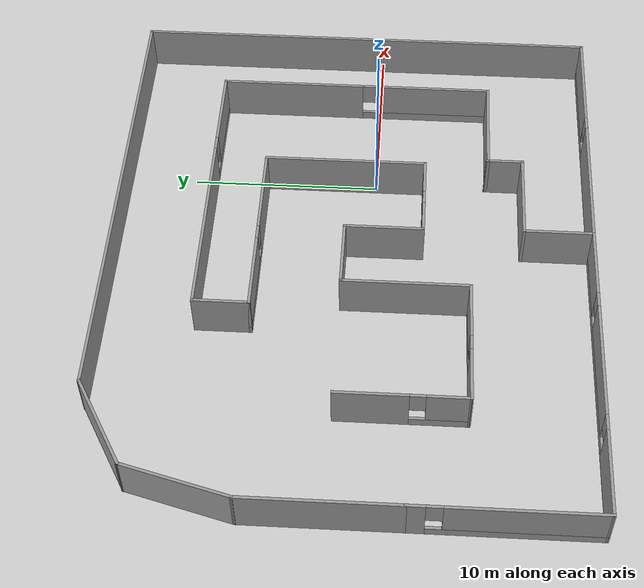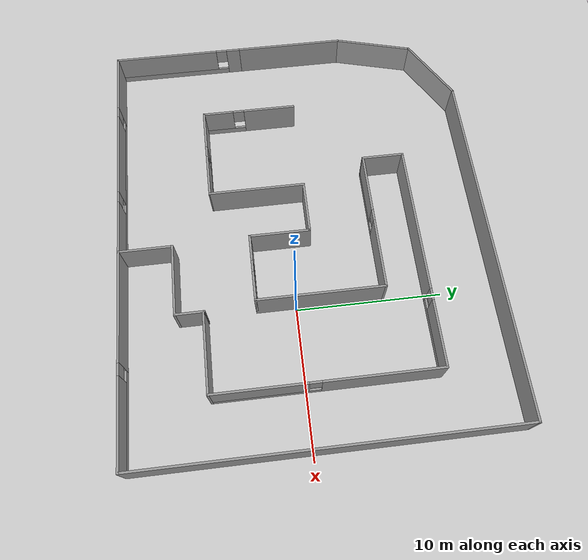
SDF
<sdf version="1.7">
 <world name="default">
  <plugin name="xbot2_clock" filename="libxbot2_gz_clock.so"/>
  <gravity>0 0 -9.81</gravity>
  <model name="ground_plane">
   <static>1</static>
   <link name="link">
    <collision name="collision">
     <geometry><plane><normal>0 0 1</normal><size>100 100</size></plane></geometry>
     <surface><friction><ode><mu>1</mu><mu2>1</mu2></ode></friction></surface>
    </collision>
    <visual name="visual">
     <cast_shadows>0</cast_shadows>
     <geometry><plane><normal>0 0 1</normal><size>100 100</size></plane></geometry>
     <material>
      <script><uri>file://media/materials/scripts/gazebo.material</uri><name>Gazebo/Grey</name></script>
     </material>
    </visual>
   </link>
  </model>
  <light name="sun" type="directional">
   <pose>0 0 10 0 -0 0</pose>
   <diffuse>0.8 0.8 0.8 1</diffuse>
   <specular>0.2 0.2 0.2 1</specular>
   <attenuation>
    <range>1000</range>
    <constant>0.9</constant>
    <linear>0.01</linear>
    <quadratic>0.001</quadratic>
   </attenuation>
   <direction>-0.5 0.1 -0.9</direction>
   <spot><inner_angle>0</inner_angle><outer_angle>0</outer_angle><falloff>0</falloff></spot>
  </light>
  <physics name="update_rate" type="ode">
   <real_time_update_rate>4000</real_time_update_rate>
   <max_step_size>0.00025</max_step_size>
   <max_contacts>5</max_contacts>
   <bullet>
    <solver><iters>100</iters><sor>1.55</sor><type>sequential_impulse</type></solver>
    <constraints>
     <contact_surface_layer>0.2</contact_surface_layer>
     <cfm>0.005</cfm>
     <erp>0.2</erp>
     <split_impulse>1</split_impulse>
     <split_impulse_penetration_threshold>-0.01</split_impulse_penetration_threshold>
    </constraints>
   </bullet>
   <ode>
    <solver>
     <iters>50</iters>
     <sor>1.2</sor>
     <type>quick</type>
     <use_dynamic_moi_rescaling>0</use_dynamic_moi_rescaling>
    </solver>
    <constraints>
     <contact_surface_layer>0.0002</contact_surface_layer>
     <contact_max_correcting_vel>500</contact_max_correcting_vel>
     <cfm>1e-06</cfm>
     <erp>0.3</erp>
    </constraints>
   </ode>
   <real_time_factor>1</real_time_factor>
  </physics>
  <magnetic_field>6e-06 2.3e-05 -4.2e-05</magnetic_field>
  <atmosphere type="adiabatic"/>
  <scene><ambient>0.4 0.4 0.4 1</ambient><background>0.7 0.7 0.7 1</background><shadows>1</shadows></scene>
  <spherical_coordinates>
   <surface_model>EARTH_WGS84</surface_model>
   <latitude_deg>0</latitude_deg>
   <longitude_deg>0</longitude_deg>
   <elevation>0</elevation>
   <heading_deg>0</heading_deg>
  </spherical_coordinates>
  <model name="Untitled2">
   <pose>-5.76967 1.06534 0 0 -0 0</pose>
   <link name="Wall_1">
    <pose>-9.35083 -2.884 0 0 -0 -1.5708</pose>
    <visual name="Wall_1_Visual_0">
     <pose>-1.49216 0 1.25 0 -0 0</pose>
     <geometry><box><size>3.76568 0.15 2.5</size></box></geometry>
     <material>
      <script><uri>file://media/materials/scripts/gazebo.material</uri><name>Gazebo/Grey</name></script>
      <ambient>1 1 1 1</ambient>
     </material>
     <meta><layer>0</layer></meta>
    </visual>
    <collision name="Wall_1_Collision_0">
     <geometry><box><size>3.76568 0.15 2.5</size></box></geometry>
     <pose>-1.49216 0 1.25 0 -0 0</pose>
    </collision>
    <visual name="Wall_1_Visual_1">
     <pose>1.88284 0 0.25 0 -0 0</pose>
     <geometry><box><size>2.98432 0.15 0.5</size></box></geometry>
     <material>
      <script><uri>file://media/materials/scripts/gazebo.material</uri><name>Gazebo/Grey</name></script>
      <ambient>1 1 1 1</ambient>
     </material>
     <meta><layer>0</layer></meta>
    </visual>
    <collision name="Wall_1_Collision_1">
     <geometry><box><size>2.98432 0.15 0.5</size></box></geometry>
     <pose>1.88284 0 0.25 0 -0 0</pose>
    </collision>
    <visual name="Wall_1_Visual_2">
     <pose>2.28284 0 1.5 0 -0 0</pose>
     <geometry><box><size>2.18431 0.15 2</size></box></geometry>
     <material>
      <script><uri>file://media/materials/scripts/gazebo.material</uri><name>Gazebo/Grey</name></script>
      <ambient>1 1 1 1</ambient>
     </material>
     <meta><layer>0</layer></meta>
    </visual>
    <collision name="Wall_1_Collision_2">
     <geometry><box><size>2.18431 0.15 2</size></box></geometry>
     <pose>2.28284 0 1.5 0 -0 0</pose>
    </collision>
    <visual name="Wall_1_Visual_3">
     <pose>0.790685 0 1.9 0 -0 0</pose>
     <geometry><box><size>0.8 0.15 1.2</size></box></geometry>
     <material>
      <script><uri>file://media/materials/scripts/gazebo.material</uri><name>Gazebo/Grey</name></script>
      <ambient>1 1 1 1</ambient>
     </material>
     <meta><layer>0</layer></meta>
    </visual>
    <collision name="Wall_1_Collision_3">
     <geometry><box><size>0.8 0.15 1.2</size></box></geometry>
     <pose>0.790685 0 1.9 0 -0 0</pose>
    </collision>
   </link>
   <link name="Wall_10">
    <pose>3.54149 7.766 0 0 -0 0</pose>
    <visual name="Wall_10_Visual_0">
     <pose>-2.64851 0 1.25 0 -0 0</pose>
     <geometry><box><size>10.453 0.15 2.5</size></box></geometry>
     <material>
      <script><uri>file://media/materials/scripts/gazebo.material</uri><name>Gazebo/Grey</name></script>
      <ambient>1 1 1 1</ambient>
     </material>
     <meta><layer>0</layer></meta>
    </visual>
    <collision name="Wall_10_Collision_0">
     <geometry><box><size>10.453 0.15 2.5</size></box></geometry>
     <pose>-2.64851 0 1.25 0 -0 0</pose>
    </collision>
    <visual name="Wall_10_Visual_1">
     <pose>5.22649 0 0.25 0 -0 0</pose>
     <geometry><box><size>5.29702 0.15 0.5</size></box></geometry>
     <material>
      <script><uri>file://media/materials/scripts/gazebo.material</uri><name>Gazebo/Grey</name></script>
      <ambient>1 1 1 1</ambient>
     </material>
     <meta><layer>0</layer></meta>
    </visual>
    <collision name="Wall_10_Collision_1">
     <geometry><box><size>5.29702 0.15 0.5</size></box></geometry>
     <pose>5.22649 0 0.25 0 -0 0</pose>
    </collision>
    <visual name="Wall_10_Visual_2">
     <pose>5.62649 0 1.5 0 -0 0</pose>
     <geometry><box><size>4.49702 0.15 2</size></box></geometry>
     <material>
      <script><uri>file://media/materials/scripts/gazebo.material</uri><name>Gazebo/Grey</name></script>
      <ambient>1 1 1 1</ambient>
     </material>
     <meta><layer>0</layer></meta>
    </visual>
    <collision name="Wall_10_Collision_2">
     <geometry><box><size>4.49702 0.15 2</size></box></geometry>
     <pose>5.62649 0 1.5 0 -0 0</pose>
    </collision>
    <visual name="Wall_10_Visual_3">
     <pose>2.97798 0 1.9 0 -0 0</pose>
     <geometry><box><size>0.8 0.15 1.2</size></box></geometry>
     <material>
      <script><uri>file://media/materials/scripts/gazebo.material</uri><name>Gazebo/Grey</name></script>
      <ambient>1 1 1 1</ambient>
     </material>
     <meta><layer>0</layer></meta>
    </visual>
    <collision name="Wall_10_Collision_3">
     <geometry><box><size>0.8 0.15 1.2</size></box></geometry>
     <pose>2.97798 0 1.9 0 -0 0</pose>
    </collision>
   </link>
   <link name="Wall_11">
    <pose>11.3415 0.360207 0 0 -0 -1.5708</pose>
    <visual name="Wall_11_Visual_0">
     <pose>-3.53589 0 1.25 0 -0 0</pose>
     <geometry><box><size>7.88982 0.15 2.5</size></box></geometry>
     <material>
      <script><uri>file://media/materials/scripts/gazebo.material</uri><name>Gazebo/Grey</name></script>
      <ambient>1 1 1 1</ambient>
     </material>
     <meta><layer>0</layer></meta>
    </visual>
    <collision name="Wall_11_Collision_0">
     <geometry><box><size>7.88982 0.15 2.5</size></box></geometry>
     <pose>-3.53589 0 1.25 0 -0 0</pose>
    </collision>
    <visual name="Wall_11_Visual_1">
     <pose>3.94491 0 0.25 0 -0 0</pose>
     <geometry><box><size>7.07177 0.15 0.5</size></box></geometry>
     <material>
      <script><uri>file://media/materials/scripts/gazebo.material</uri><name>Gazebo/Grey</name></script>
      <ambient>1 1 1 1</ambient>
     </material>
     <meta><layer>0</layer></meta>
    </visual>
    <collision name="Wall_11_Collision_1">
     <geometry><box><size>7.07177 0.15 0.5</size></box></geometry>
     <pose>3.94491 0 0.25 0 -0 0</pose>
    </collision>
    <visual name="Wall_11_Visual_2">
     <pose>4.34491 0 1.5 0 -0 0</pose>
     <geometry><box><size>6.27177 0.15 2</size></box></geometry>
     <material>
      <script><uri>file://media/materials/scripts/gazebo.material</uri><name>Gazebo/Grey</name></script>
      <ambient>1 1 1 1</ambient>
     </material>
     <meta><layer>0</layer></meta>
    </visual>
    <collision name="Wall_11_Collision_2">
     <geometry><box><size>6.27177 0.15 2</size></box></geometry>
     <pose>4.34491 0 1.5 0 -0 0</pose>
    </collision>
    <visual name="Wall_11_Visual_3">
     <pose>0.809022 0 1.9 0 -0 0</pose>
     <geometry><box><size>0.8 0.15 1.2</size></box></geometry>
     <material>
      <script><uri>file://media/materials/scripts/gazebo.material</uri><name>Gazebo/Grey</name></script>
      <ambient>1 1 1 1</ambient>
     </material>
     <meta><layer>0</layer></meta>
    </visual>
    <collision name="Wall_11_Collision_3">
     <geometry><box><size>0.8 0.15 1.2</size></box></geometry>
     <pose>0.809022 0 1.9 0 -0 0</pose>
    </collision>
   </link>
   <link name="Wall_12">
    <collision name="Wall_12_Collision">
     <geometry><box><size>5.5 0.15 2.5</size></box></geometry>
     <pose>0 0 1.25 0 -0 0</pose>
    </collision>
    <visual name="Wall_12_Visual">
     <pose>0 0 1.25 0 -0 0</pose>
     <geometry><box><size>5.5 0.15 2.5</size></box></geometry>
     <material>
      <script><uri>file://media/materials/scripts/gazebo.material</uri><name>Gazebo/Grey</name></script>
      <ambient>1 1 1 1</ambient>
     </material>
     <meta><layer>0</layer></meta>
    </visual>
    <pose>8.66648 -7.09303 0 0 -0 3.14159</pose>
   </link>
   <link name="Wall_13">
    <collision name="Wall_13_Collision">
     <geometry><box><size>2.03841 0.15 2.5</size></box></geometry>
     <pose>0 0 1.25 0 -0 0</pose>
    </collision>
    <visual name="Wall_13_Visual">
     <pose>0 0 1.25 0 -0 0</pose>
     <geometry><box><size>2.03841 0.15 2.5</size></box></geometry>
     <material>
      <script><uri>file://media/materials/scripts/gazebo.material</uri><name>Gazebo/Grey</name></script>
      <ambient>1 1 1 1</ambient>
     </material>
     <meta><layer>0</layer></meta>
    </visual>
    <pose>5.99148 -7.98979 0 0 -0 -1.5708</pose>
   </link>
   <link name="Wall_14">
    <collision name="Wall_14_Collision">
     <geometry><box><size>5 0.15 2.5</size></box></geometry>
     <pose>0 0 1.25 0 -0 0</pose>
    </collision>
    <visual name="Wall_14_Visual">
     <pose>0 0 1.25 0 -0 0</pose>
     <geometry><box><size>5 0.15 2.5</size></box></geometry>
     <material>
      <script><uri>file://media/materials/scripts/gazebo.material</uri><name>Gazebo/Grey</name></script>
      <ambient>1 1 1 1</ambient>
     </material>
     <meta><layer>0</layer></meta>
    </visual>
    <pose>3.56649 -8.934 0 0 -0 3.14159</pose>
   </link>
   <link name="Wall_15">
    <collision name="Wall_15_Collision">
     <geometry><box><size>3.75 0.15 2.5</size></box></geometry>
     <pose>0 0 1.25 0 -0 0</pose>
    </collision>
    <visual name="Wall_15_Visual">
     <pose>0 0 1.25 0 -0 0</pose>
     <geometry><box><size>3.75 0.15 2.5</size></box></geometry>
     <material>
      <script><uri>file://media/materials/scripts/gazebo.material</uri><name>Gazebo/Grey</name></script>
      <ambient>1 1 1 1</ambient>
     </material>
     <meta><layer>0</layer></meta>
    </visual>
    <pose>1.14149 -10.734 0 0 -0 -1.5708</pose>
   </link>
   <link name="Wall_16">
    <pose>8.19149 -12.534 0 0 -0 0</pose>
    <visual name="Wall_16_Visual_0">
     <pose>-3.29393 0 1.25 0 -0 0</pose>
     <geometry><box><size>7.66214 0.15 2.5</size></box></geometry>
     <material>
      <script><uri>file://media/materials/scripts/gazebo.material</uri><name>Gazebo/Grey</name></script>
      <ambient>1 1 1 1</ambient>
     </material>
     <meta><layer>0</layer></meta>
    </visual>
    <collision name="Wall_16_Collision_0">
     <geometry><box><size>7.66214 0.15 2.5</size></box></geometry>
     <pose>-3.29393 0 1.25 0 -0 0</pose>
    </collision>
    <visual name="Wall_16_Visual_1">
     <pose>3.83107 0 0.25 0 -0 0</pose>
     <geometry><box><size>6.58786 0.15 0.5</size></box></geometry>
     <material>
      <script><uri>file://media/materials/scripts/gazebo.material</uri><name>Gazebo/Grey</name></script>
      <ambient>1 1 1 1</ambient>
     </material>
     <meta><layer>0</layer></meta>
    </visual>
    <collision name="Wall_16_Collision_1">
     <geometry><box><size>6.58786 0.15 0.5</size></box></geometry>
     <pose>3.83107 0 0.25 0 -0 0</pose>
    </collision>
    <visual name="Wall_16_Visual_2">
     <pose>4.23107 0 1.5 0 -0 0</pose>
     <geometry><box><size>5.78787 0.15 2</size></box></geometry>
     <material>
      <script><uri>file://media/materials/scripts/gazebo.material</uri><name>Gazebo/Grey</name></script>
      <ambient>1 1 1 1</ambient>
     </material>
     <meta><layer>0</layer></meta>
    </visual>
    <collision name="Wall_16_Collision_2">
     <geometry><box><size>5.78787 0.15 2</size></box></geometry>
     <pose>4.23107 0 1.5 0 -0 0</pose>
    </collision>
    <visual name="Wall_16_Visual_3">
     <pose>0.937135 0 1.9 0 -0 0</pose>
     <geometry><box><size>0.8 0.15 1.2</size></box></geometry>
     <material>
      <script><uri>file://media/materials/scripts/gazebo.material</uri><name>Gazebo/Grey</name></script>
      <ambient>1 1 1 1</ambient>
     </material>
     <meta><layer>0</layer></meta>
    </visual>
    <collision name="Wall_16_Collision_3">
     <geometry><box><size>0.8 0.15 1.2</size></box></geometry>
     <pose>0.937135 0 1.9 0 -0 0</pose>
    </collision>
   </link>
   <link name="Wall_17">
    <collision name="Wall_17_Collision">
     <geometry><box><size>25.25 0.15 2.5</size></box></geometry>
     <pose>0 0 1.25 0 -0 0</pose>
    </collision>
    <visual name="Wall_17_Visual">
     <pose>0 0 1.25 0 -0 0</pose>
     <geometry><box><size>25.25 0.15 2.5</size></box></geometry>
     <material>
      <script><uri>file://media/materials/scripts/gazebo.material</uri><name>Gazebo/Grey</name></script>
      <ambient>1 1 1 1</ambient>
     </material>
     <meta><layer>0</layer></meta>
    </visual>
    <pose>15.2415 0.016001 0 0 -0 1.5708</pose>
   </link>
   <link name="Wall_18">
    <collision name="Wall_18_Collision">
     <geometry><box><size>24.75 0.15 2.5</size></box></geometry>
     <pose>0 0 1.25 0 -0 0</pose>
    </collision>
    <visual name="Wall_18_Visual">
     <pose>0 0 1.25 0 -0 0</pose>
     <geometry><box><size>24.75 0.15 2.5</size></box></geometry>
     <material>
      <script><uri>file://media/materials/scripts/gazebo.material</uri><name>Gazebo/Grey</name></script>
      <ambient>1 1 1 1</ambient>
     </material>
     <meta><layer>0</layer></meta>
    </visual>
    <pose>2.94149 12.566 0 0 -0 3.14159</pose>
   </link>
   <link name="Wall_19">
    <collision name="Wall_19_Collision">
     <geometry><box><size>5.25 0.15 2.5</size></box></geometry>
     <pose>0 0 1.25 0 -0 0</pose>
    </collision>
    <visual name="Wall_19_Visual">
     <pose>0 0 1.25 0 -0 0</pose>
     <geometry><box><size>5.25 0.15 2.5</size></box></geometry>
     <material>
      <script><uri>file://media/materials/scripts/gazebo.material</uri><name>Gazebo/Grey</name></script>
      <ambient>1 1 1 1</ambient>
     </material>
     <meta><layer>0</layer></meta>
    </visual>
    <pose>-11.5669 11.291 0 0 -0 -2.61799</pose>
   </link>
   <link name="Wall_2">
    <pose>-5.97967 -6.20772 0 0 -0 0.007036</pose>
    <visual name="Wall_2_Visual_0">
     <pose>-1.98374 0 1.25 0 -0 0</pose>
     <geometry><box><size>2.92501 0.15 2.5</size></box></geometry>
     <material>
      <script><uri>file://media/materials/scripts/gazebo.material</uri><name>Gazebo/Grey</name></script>
      <ambient>1 1 1 1</ambient>
     </material>
     <meta><layer>0</layer></meta>
    </visual>
    <collision name="Wall_2_Collision_0">
     <geometry><box><size>2.92501 0.15 2.5</size></box></geometry>
     <pose>-1.98374 0 1.25 0 -0 0</pose>
    </collision>
    <visual name="Wall_2_Visual_1">
     <pose>1.4625 0 0.25 0 -0 0</pose>
     <geometry><box><size>3.96748 0.15 0.5</size></box></geometry>
     <material>
      <script><uri>file://media/materials/scripts/gazebo.material</uri><name>Gazebo/Grey</name></script>
      <ambient>1 1 1 1</ambient>
     </material>
     <meta><layer>0</layer></meta>
    </visual>
    <collision name="Wall_2_Collision_1">
     <geometry><box><size>3.96748 0.15 0.5</size></box></geometry>
     <pose>1.4625 0 0.25 0 -0 0</pose>
    </collision>
    <visual name="Wall_2_Visual_2">
     <pose>1.8625 0 1.5 0 -0 0</pose>
     <geometry><box><size>3.16748 0.15 2</size></box></geometry>
     <material>
      <script><uri>file://media/materials/scripts/gazebo.material</uri><name>Gazebo/Grey</name></script>
      <ambient>1 1 1 1</ambient>
     </material>
     <meta><layer>0</layer></meta>
    </visual>
    <collision name="Wall_2_Collision_2">
     <geometry><box><size>3.16748 0.15 2</size></box></geometry>
     <pose>1.8625 0 1.5 0 -0 0</pose>
    </collision>
    <visual name="Wall_2_Visual_3">
     <pose>-0.121236 0 1.9 0 -0 0</pose>
     <geometry><box><size>0.8 0.15 1.2</size></box></geometry>
     <material>
      <script><uri>file://media/materials/scripts/gazebo.material</uri><name>Gazebo/Grey</name></script>
      <ambient>1 1 1 1</ambient>
     </material>
     <meta><layer>0</layer></meta>
    </visual>
    <collision name="Wall_2_Collision_3">
     <geometry><box><size>0.8 0.15 1.2</size></box></geometry>
     <pose>-0.121236 0 1.9 0 -0 0</pose>
    </collision>
   </link>
   <link name="Wall_20">
    <collision name="Wall_20_Collision">
     <geometry><box><size>5.75 0.15 2.5</size></box></geometry>
     <pose>0 0 1.25 0 -0 0</pose>
    </collision>
    <visual name="Wall_20_Visual">
     <pose>0 0 1.25 0 -0 0</pose>
     <geometry><box><size>5.75 0.15 2.5</size></box></geometry>
     <material>
      <script><uri>file://media/materials/scripts/gazebo.material</uri><name>Gazebo/Grey</name></script>
      <ambient>1 1 1 1</ambient>
     </material>
     <meta><layer>0</layer></meta>
    </visual>
    <pose>-14.4999 7.31141 0 0 -0 -1.8326</pose>
   </link>
   <link name="Wall_21">
    <collision name="Wall_21_Collision">
     <geometry><box><size>8 0.15 2.5</size></box></geometry>
     <pose>0 0 1.25 0 -0 0</pose>
    </collision>
    <visual name="Wall_21_Visual">
     <pose>0 0 1.25 0 -0 0</pose>
     <geometry><box><size>8 0.15 2.5</size></box></geometry>
     <material>
      <script><uri>file://media/materials/scripts/gazebo.material</uri><name>Gazebo/Grey</name></script>
      <ambient>1 1 1 1</ambient>
     </material>
     <meta><layer>0</layer></meta>
    </visual>
    <pose>-15.2246 0.681817 0 0 -0 -1.5708</pose>
   </link>
   <link name="Wall_22">
    <pose>-15.2246 -7.91818 0 0 -0 -1.5708</pose>
    <visual name="Wall_22_Visual_0">
     <pose>-4.24608 0 1.25 0 -0 0</pose>
     <geometry><box><size>1.00785 0.15 2.5</size></box></geometry>
     <material>
      <script><uri>file://media/materials/scripts/gazebo.material</uri><name>Gazebo/Grey</name></script>
      <ambient>1 1 1 1</ambient>
     </material>
     <meta><layer>0</layer></meta>
    </visual>
    <collision name="Wall_22_Collision_0">
     <geometry><box><size>1.00785 0.15 2.5</size></box></geometry>
     <pose>-4.24608 0 1.25 0 -0 0</pose>
    </collision>
    <visual name="Wall_22_Visual_1">
     <pose>0.503923 0 0.25 0 -0 0</pose>
     <geometry><box><size>8.49216 0.15 0.5</size></box></geometry>
     <material>
      <script><uri>file://media/materials/scripts/gazebo.material</uri><name>Gazebo/Grey</name></script>
      <ambient>1 1 1 1</ambient>
     </material>
     <meta><layer>0</layer></meta>
    </visual>
    <collision name="Wall_22_Collision_1">
     <geometry><box><size>8.49216 0.15 0.5</size></box></geometry>
     <pose>0.503923 0 0.25 0 -0 0</pose>
    </collision>
    <visual name="Wall_22_Visual_2">
     <pose>0.903923 0 1.5 0 -0 0</pose>
     <geometry><box><size>7.69215 0.15 2</size></box></geometry>
     <material>
      <script><uri>file://media/materials/scripts/gazebo.material</uri><name>Gazebo/Grey</name></script>
      <ambient>1 1 1 1</ambient>
     </material>
     <meta><layer>0</layer></meta>
    </visual>
    <collision name="Wall_22_Collision_2">
     <geometry><box><size>7.69215 0.15 2</size></box></geometry>
     <pose>0.903923 0 1.5 0 -0 0</pose>
    </collision>
    <visual name="Wall_22_Visual_3">
     <pose>-3.34215 0 1.9 0 -0 0</pose>
     <geometry><box><size>0.8 0.15 1.2</size></box></geometry>
     <material>
      <script><uri>file://media/materials/scripts/gazebo.material</uri><name>Gazebo/Grey</name></script>
      <ambient>1 1 1 1</ambient>
     </material>
     <meta><layer>0</layer></meta>
    </visual>
    <collision name="Wall_22_Collision_3">
     <geometry><box><size>0.8 0.15 1.2</size></box></geometry>
     <pose>-3.34215 0 1.9 0 -0 0</pose>
    </collision>
   </link>
   <link name="Wall_23">
    <pose>-7.04157 -12.5636 0 0 -0 0.003616</pose>
    <visual name="Wall_23_Visual_0">
     <pose>-5.96905 0 1.25 0 -0 0</pose>
     <geometry><box><size>4.57813 0.15 2.5</size></box></geometry>
     <material>
      <script><uri>file://media/materials/scripts/gazebo.material</uri><name>Gazebo/Grey</name></script>
      <ambient>1 1 1 1</ambient>
     </material>
     <meta><layer>0</layer></meta>
    </visual>
    <collision name="Wall_23_Collision_0">
     <geometry><box><size>4.57813 0.15 2.5</size></box></geometry>
     <pose>-5.96905 0 1.25 0 -0 0</pose>
    </collision>
    <visual name="Wall_23_Visual_1">
     <pose>2.28907 0 0.25 0 -0 0</pose>
     <geometry><box><size>11.9381 0.15 0.5</size></box></geometry>
     <material>
      <script><uri>file://media/materials/scripts/gazebo.material</uri><name>Gazebo/Grey</name></script>
      <ambient>1 1 1 1</ambient>
     </material>
     <meta><layer>0</layer></meta>
    </visual>
    <collision name="Wall_23_Collision_1">
     <geometry><box><size>11.9381 0.15 0.5</size></box></geometry>
     <pose>2.28907 0 0.25 0 -0 0</pose>
    </collision>
    <visual name="Wall_23_Visual_2">
     <pose>0.325551 0 1.5 0 -0 0</pose>
     <geometry><box><size>6.41106 0.15 2</size></box></geometry>
     <material>
      <script><uri>file://media/materials/scripts/gazebo.material</uri><name>Gazebo/Grey</name></script>
      <ambient>1 1 1 1</ambient>
     </material>
     <meta><layer>0</layer></meta>
    </visual>
    <collision name="Wall_23_Collision_2">
     <geometry><box><size>6.41106 0.15 2</size></box></geometry>
     <pose>0.325551 0 1.5 0 -0 0</pose>
    </collision>
    <visual name="Wall_23_Visual_3">
     <pose>6.2946 0 1.5 0 -0 0</pose>
     <geometry><box><size>3.92703 0.15 2</size></box></geometry>
     <material>
      <script><uri>file://media/materials/scripts/gazebo.material</uri><name>Gazebo/Grey</name></script>
      <ambient>1 1 1 1</ambient>
     </material>
     <meta><layer>0</layer></meta>
    </visual>
    <collision name="Wall_23_Collision_3">
     <geometry><box><size>3.92703 0.15 2</size></box></geometry>
     <pose>6.2946 0 1.5 0 -0 0</pose>
    </collision>
    <visual name="Wall_23_Visual_4">
     <pose>-3.27998 0 1.9 0 -0 0</pose>
     <geometry><box><size>0.8 0.15 1.2</size></box></geometry>
     <material>
      <script><uri>file://media/materials/scripts/gazebo.material</uri><name>Gazebo/Grey</name></script>
      <ambient>1 1 1 1</ambient>
     </material>
     <meta><layer>0</layer></meta>
    </visual>
    <collision name="Wall_23_Collision_4">
     <geometry><box><size>0.8 0.15 1.2</size></box></geometry>
     <pose>-3.27998 0 1.9 0 -0 0</pose>
    </collision>
    <visual name="Wall_23_Visual_5">
     <pose>3.93108 0 1.9 0 -0 0</pose>
     <geometry><box><size>0.8 0.15 1.2</size></box></geometry>
     <material>
      <script><uri>file://media/materials/scripts/gazebo.material</uri><name>Gazebo/Grey</name></script>
      <ambient>1 1 1 1</ambient>
     </material>
     <meta><layer>0</layer></meta>
    </visual>
    <collision name="Wall_23_Collision_5">
     <geometry><box><size>0.8 0.15 1.2</size></box></geometry>
     <pose>3.93108 0 1.9 0 -0 0</pose>
    </collision>
   </link>
   <link name="Wall_3">
    <collision name="Wall_3_Collision">
     <geometry><box><size>6.75 0.15 2.5</size></box></geometry>
     <pose>0 0 1.25 0 -0 0</pose>
    </collision>
    <visual name="Wall_3_Visual">
     <pose>0 0 1.25 0 -0 0</pose>
     <geometry><box><size>6.75 0.15 2.5</size></box></geometry>
     <material>
      <script><uri>file://media/materials/scripts/gazebo.material</uri><name>Gazebo/Grey</name></script>
      <ambient>1 1 1 1</ambient>
     </material>
     <meta><layer>0</layer></meta>
    </visual>
    <pose>-2.60852 -2.884 0 0 -0 1.5708</pose>
   </link>
   <link name="Wall_4">
    <collision name="Wall_4_Collision">
     <geometry><box><size>3.75 0.15 2.5</size></box></geometry>
     <pose>0 0 1.25 0 -0 0</pose>
    </collision>
    <visual name="Wall_4_Visual">
     <pose>0 0 1.25 0 -0 0</pose>
     <geometry><box><size>3.75 0.15 2.5</size></box></geometry>
     <material>
      <script><uri>file://media/materials/scripts/gazebo.material</uri><name>Gazebo/Grey</name></script>
      <ambient>1 1 1 1</ambient>
     </material>
     <meta><layer>0</layer></meta>
    </visual>
    <pose>-0.808515 0.416001 0 0 -0 0</pose>
   </link>
   <link name="Wall_5">
    <collision name="Wall_5_Collision">
     <geometry><box><size>4.25 0.15 2.5</size></box></geometry>
     <pose>0 0 1.25 0 -0 0</pose>
    </collision>
    <visual name="Wall_5_Visual">
     <pose>0 0 1.25 0 -0 0</pose>
     <geometry><box><size>4.25 0.15 2.5</size></box></geometry>
     <material>
      <script><uri>file://media/materials/scripts/gazebo.material</uri><name>Gazebo/Grey</name></script>
      <ambient>1 1 1 1</ambient>
     </material>
     <meta><layer>0</layer></meta>
    </visual>
    <pose>0.991485 -1.634 0 0 -0 -1.5708</pose>
   </link>
   <link name="Wall_6">
    <pose>3.29149 -3.684 0 0 -0 0</pose>
    <visual name="Wall_6_Visual_0">
     <pose>-1.43389 0 1.25 0 -0 0</pose>
     <geometry><box><size>1.88223 0.15 2.5</size></box></geometry>
     <material>
      <script><uri>file://media/materials/scripts/gazebo.material</uri><name>Gazebo/Grey</name></script>
      <ambient>1 1 1 1</ambient>
     </material>
     <meta><layer>0</layer></meta>
    </visual>
    <collision name="Wall_6_Collision_0">
     <geometry><box><size>1.88223 0.15 2.5</size></box></geometry>
     <pose>-1.43389 0 1.25 0 -0 0</pose>
    </collision>
    <visual name="Wall_6_Visual_1">
     <pose>0.941115 0 0.25 0 -0 0</pose>
     <geometry><box><size>2.86777 0.15 0.5</size></box></geometry>
     <material>
      <script><uri>file://media/materials/scripts/gazebo.material</uri><name>Gazebo/Grey</name></script>
      <ambient>1 1 1 1</ambient>
     </material>
     <meta><layer>0</layer></meta>
    </visual>
    <collision name="Wall_6_Collision_1">
     <geometry><box><size>2.86777 0.15 0.5</size></box></geometry>
     <pose>0.941115 0 0.25 0 -0 0</pose>
    </collision>
    <visual name="Wall_6_Visual_2">
     <pose>1.34112 0 1.5 0 -0 0</pose>
     <geometry><box><size>2.06777 0.15 2</size></box></geometry>
     <material>
      <script><uri>file://media/materials/scripts/gazebo.material</uri><name>Gazebo/Grey</name></script>
      <ambient>1 1 1 1</ambient>
     </material>
     <meta><layer>0</layer></meta>
    </visual>
    <collision name="Wall_6_Collision_2">
     <geometry><box><size>2.06777 0.15 2</size></box></geometry>
     <pose>1.34112 0 1.5 0 -0 0</pose>
    </collision>
    <visual name="Wall_6_Visual_3">
     <pose>-0.092769 0 1.9 0 -0 0</pose>
     <geometry><box><size>0.8 0.15 1.2</size></box></geometry>
     <material>
      <script><uri>file://media/materials/scripts/gazebo.material</uri><name>Gazebo/Grey</name></script>
      <ambient>1 1 1 1</ambient>
     </material>
     <meta><layer>0</layer></meta>
    </visual>
    <collision name="Wall_6_Collision_3">
     <geometry><box><size>0.8 0.15 1.2</size></box></geometry>
     <pose>-0.092769 0 1.9 0 -0 0</pose>
    </collision>
   </link>
   <link name="Wall_7">
    <collision name="Wall_7_Collision">
     <geometry><box><size>8.75 0.15 2.5</size></box></geometry>
     <pose>0 0 1.25 0 -0 0</pose>
    </collision>
    <visual name="Wall_7_Visual">
     <pose>0 0 1.25 0 -0 0</pose>
     <geometry><box><size>8.75 0.15 2.5</size></box></geometry>
     <material>
      <script><uri>file://media/materials/scripts/gazebo.material</uri><name>Gazebo/Grey</name></script>
      <ambient>1 1 1 1</ambient>
     </material>
     <meta><layer>0</layer></meta>
    </visual>
    <pose>5.59148 0.616001 0 0 -0 1.5708</pose>
   </link>
   <link name="Wall_8">
    <pose>0.666485 4.916 0 0 -0 3.14159</pose>
    <visual name="Wall_8_Visual_0">
     <pose>-2.54294 0 1.25 0 -0 0</pose>
     <geometry><box><size>4.91412 0.15 2.5</size></box></geometry>
     <material>
      <script><uri>file://media/materials/scripts/gazebo.material</uri><name>Gazebo/Grey</name></script>
      <ambient>1 1 1 1</ambient>
     </material>
     <meta><layer>0</layer></meta>
    </visual>
    <collision name="Wall_8_Collision_0">
     <geometry><box><size>4.91412 0.15 2.5</size></box></geometry>
     <pose>-2.54294 0 1.25 0 -0 0</pose>
    </collision>
    <visual name="Wall_8_Visual_1">
     <pose>2.45706 0 0.25 0 -0 0</pose>
     <geometry><box><size>5.08588 0.15 0.5</size></box></geometry>
     <material>
      <script><uri>file://media/materials/scripts/gazebo.material</uri><name>Gazebo/Grey</name></script>
      <ambient>1 1 1 1</ambient>
     </material>
     <meta><layer>0</layer></meta>
    </visual>
    <collision name="Wall_8_Collision_1">
     <geometry><box><size>5.08588 0.15 0.5</size></box></geometry>
     <pose>2.45706 0 0.25 0 -0 0</pose>
    </collision>
    <visual name="Wall_8_Visual_2">
     <pose>2.85706 0 1.5 0 -0 0</pose>
     <geometry><box><size>4.28588 0.15 2</size></box></geometry>
     <material>
      <script><uri>file://media/materials/scripts/gazebo.material</uri><name>Gazebo/Grey</name></script>
      <ambient>1 1 1 1</ambient>
     </material>
     <meta><layer>0</layer></meta>
    </visual>
    <collision name="Wall_8_Collision_2">
     <geometry><box><size>4.28588 0.15 2</size></box></geometry>
     <pose>2.85706 0 1.5 0 -0 0</pose>
    </collision>
    <visual name="Wall_8_Visual_3">
     <pose>0.314124 0 1.9 0 -0 0</pose>
     <geometry><box><size>0.8 0.15 1.2</size></box></geometry>
     <material>
      <script><uri>file://media/materials/scripts/gazebo.material</uri><name>Gazebo/Grey</name></script>
      <ambient>1 1 1 1</ambient>
     </material>
     <meta><layer>0</layer></meta>
    </visual>
    <collision name="Wall_8_Collision_3">
     <geometry><box><size>0.8 0.15 1.2</size></box></geometry>
     <pose>0.314124 0 1.9 0 -0 0</pose>
    </collision>
   </link>
   <link name="Wall_9">
    <collision name="Wall_9_Collision">
     <geometry><box><size>3 0.15 2.5</size></box></geometry>
     <pose>0 0 1.25 0 -0 0</pose>
    </collision>
    <visual name="Wall_9_Visual">
     <pose>0 0 1.25 0 -0 0</pose>
     <geometry><box><size>3 0.15 2.5</size></box></geometry>
     <material>
      <script><uri>file://media/materials/scripts/gazebo.material</uri><name>Gazebo/Grey</name></script>
      <ambient>1 1 1 1</ambient>
     </material>
     <meta><layer>0</layer></meta>
    </visual>
    <pose>-4.25852 6.341 0 0 -0 1.5708</pose>
   </link>
   <static>1</static>
  </model>
 </world>
</sdf>
